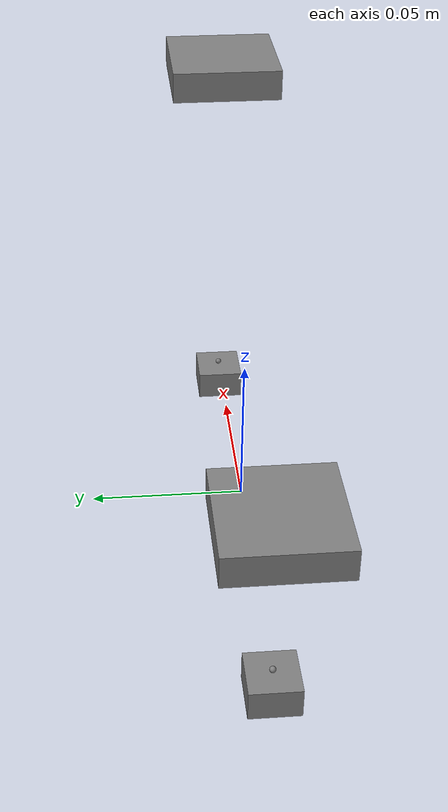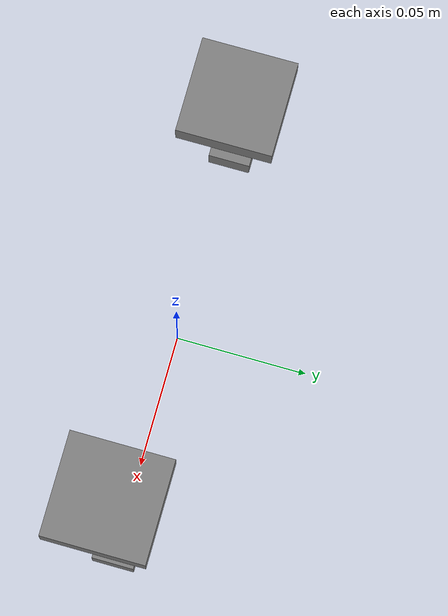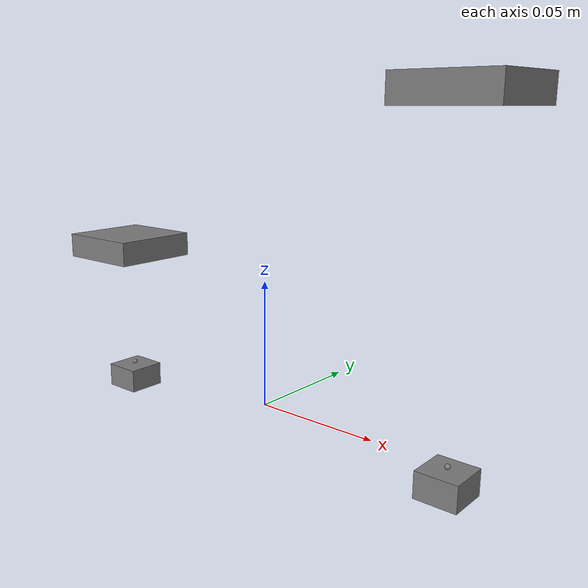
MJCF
<?xml version="1.0" encoding="utf-8"?>
<!-- Complete MJCF-compatible teaching fixture with geometry and collision. -->
<mujoco model="rangefinder_chart_fixture">
  <option timestep="0.002" integrator="Euler" gravity="0 0 0" />
  <worldbody>
    <body name="left_rangefinder_carrier" pos="-0.08 0 0">
      <joint name="left_rangefinder_mount_joint" type="slide" axis="1 0 0" stiffness="1000" damping="5" />
      <site name="left_rangefinder_site" size=".001" />
      <geom name="left_rangefinder_surface" type="box" pos="0 0 -.006" size=".008 .008 .005" mass=".2" />
    </body>
    <!-- Spring-mounted targets move along the sites' positive Z ray direction. -->
    <body name="left_rangefinder_target" pos="-0.08 0 0.055">
      <joint name="left_rangefinder_target_joint" type="slide" axis="0 0 1" stiffness="5" damping=".015" springref="0" />
      <geom name="left_rangefinder_target_shape" type="box" size=".018 .018 .005" mass=".1" />
    </body>
    <body name="right_rangefinder_carrier" pos="0.08 0 0">
      <joint name="right_rangefinder_mount_joint" type="slide" axis="1 0 0" stiffness="1000" damping="5" />
      <site name="right_rangefinder_site" size=".001" />
      <geom name="right_rangefinder_surface" type="box" pos="0 0 -.006" size=".008 .008 .005" mass=".2" />
    </body>
    <body name="right_rangefinder_target" pos="0.08 0 0.12">
      <joint name="right_rangefinder_target_joint" type="slide" axis="0 0 1" stiffness="5" damping=".015" springref="0" />
      <geom name="right_rangefinder_target_shape" type="box" size=".018 .018 .005" mass=".1" />
    </body>
  </worldbody>
  <!-- The playground resets to this keyframe to start both targets oscillating. -->
  <keyframe>
    <key name="oscillating_targets" qpos="0 .02 0 .035" />
  </keyframe>
  <!-- Orca computes the ray queries; no built-in sensor declaration is required. -->
  <custom>
    <text name="orca.sensor.v1/left_rangefinder/plugin" data="com.orca.examples.rangefinder" />
    <tuple name="orca.sensor.v1/left_rangefinder/site">
      <element objtype="site" objname="left_rangefinder_site" />
    </tuple>
    <text name="orca.sensor.v1/right_rangefinder/plugin" data="com.orca.examples.rangefinder" />
    <tuple name="orca.sensor.v1/right_rangefinder/site">
      <element objtype="site" objname="right_rangefinder_site" />
    </tuple>
  </custom>
</mujoco>
